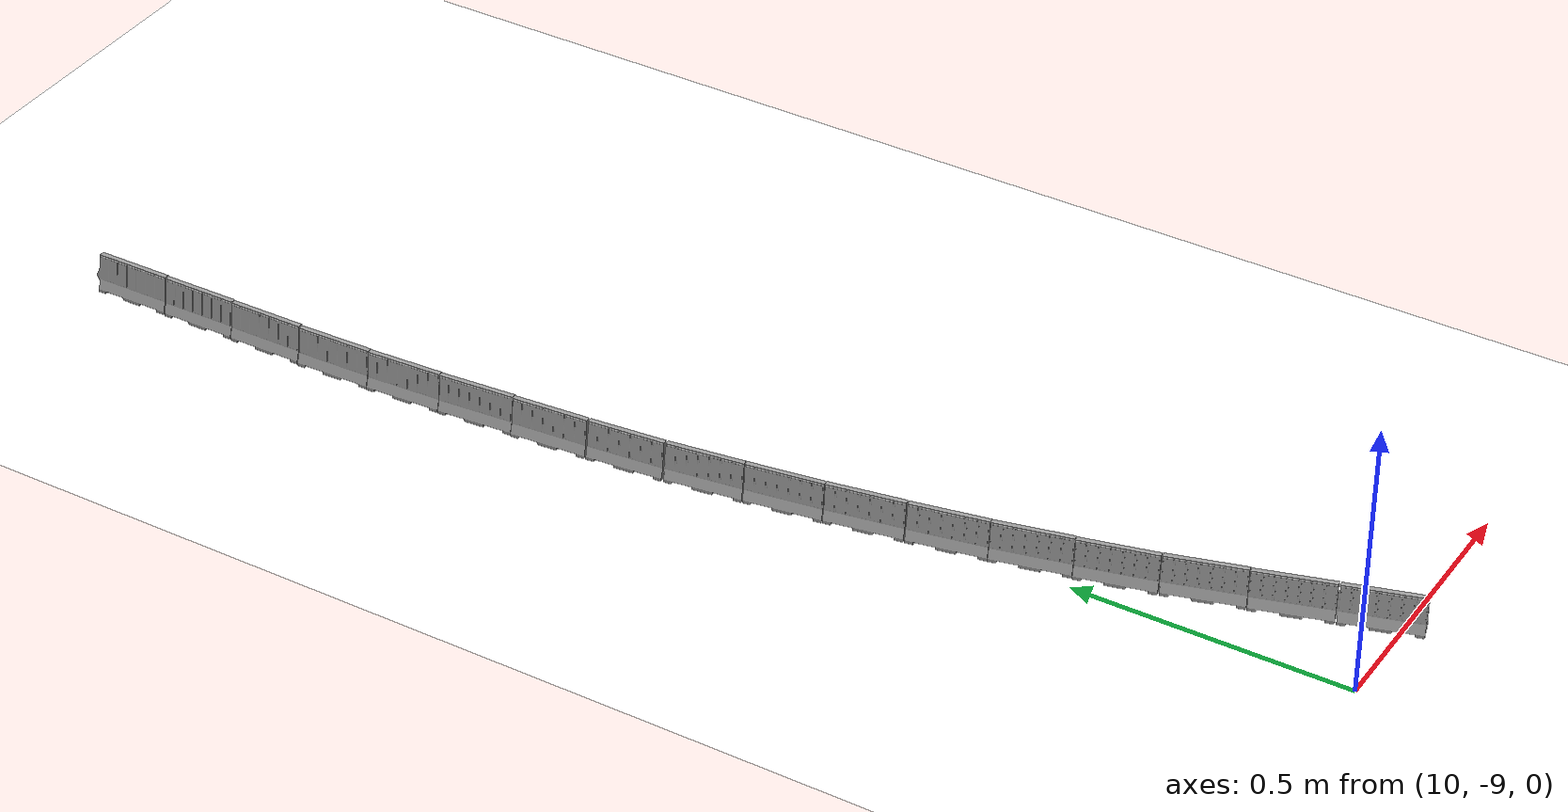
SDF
<sdf version="1.6">
 <world name="bfmc_official">
  <model name="track">
   <static>1</static>
   <link name="link">
    <collision name="collision">
     <geometry><plane><normal>0 0 1</normal><size>14.68 14.99</size></plane></geometry>
     <surface>
      <contact><collide_bitmask>65535</collide_bitmask></contact>
      <friction><ode><mu>1</mu><mu2>1</mu2></ode></friction>
     </surface>
    </collision>
    <visual name="visual">
     <geometry><plane><normal>0 0 1</normal><size>14.68 14.99</size></plane></geometry>
     <material>
      <ambient>1 1 1 1</ambient>
      <diffuse>1 1 1 1</diffuse>
      <specular>0 0 0 0</specular>
      <emissive>1 1 1 1</emissive>
      <script>
       <uri>model://track/materials/scripts</uri>
       <uri>model://track/materials/textures</uri>
       <name>BFMC_MATERIAL</name>
      </script>
     </material>
    </visual>
   </link>
   <pose>7.34 -7.495 0 0 -0 0</pose>
  </model>
  <model name="separator_clone_clone_clone_clone_clone_clone_clone_clone_2_clone_clone_clone_clone_clone_clone_clone_clone_clone_clone_clone_clone_clone_clone_clone_clone_clone_clone_clone_clone_clone_clone_clone_clone_clone_clone_clone_clone_clone_clone_clone_clone_clone_clone_clone_clone_clone_clone_clone_clone_clone_0_clone">
   <link name="separator::separator::link_0">
    <inertial>
     <mass>1</mass>
     <inertia>
      <ixx>0.166667</ixx>
      <ixy>0</ixy>
      <ixz>0</ixz>
      <iyy>0.166667</iyy>
      <iyz>0</iyz>
      <izz>0.166667</izz>
     </inertia>
    </inertial>
    <visual name="visual">
     <geometry><mesh><uri>model://separator/meshes/separator.dae</uri><scale>1 1 1</scale></mesh></geometry>
     <material>
      <lighting>1</lighting>
      <script><uri>file://media/materials/scripts/gazebo.material</uri><name>Gazebo/Gray</name></script>
      <shader type="vertex"><normal_map>__default__</normal_map></shader>
      <ambient>0.3 0.3 0.3 1</ambient>
      <diffuse>0.7 0.7 0.7 1</diffuse>
      <specular>0.01 0.01 0.01 1</specular>
      <emissive>0 0 0 1</emissive>
     </material>
    </visual>
    <collision name="collision">
     <geometry><mesh><uri>model://separator/meshes/separator.dae</uri><scale>1 1 1</scale></mesh></geometry>
     <surface>
      <friction>
       <ode><mu>1</mu><mu2>1</mu2><fdir1>0 0 0</fdir1><slip1>0</slip1><slip2>0</slip2></ode>
       <torsional>
        <coefficient>1</coefficient>
        <patch_radius>0</patch_radius>
        <surface_radius>0</surface_radius>
        <use_patch_radius>1</use_patch_radius>
        <ode><slip>0</slip></ode>
       </torsional>
      </friction>
      <bounce><restitution_coefficient>0</restitution_coefficient><threshold>1e+06</threshold></bounce>
      <contact>
       <collide_without_contact>0</collide_without_contact>
       <collide_without_contact_bitmask>1</collide_without_contact_bitmask>
       <collide_bitmask>1</collide_bitmask>
       <ode>
        <soft_cfm>0</soft_cfm>
        <soft_erp>0.2</soft_erp>
        <kp>1e+13</kp>
        <kd>1</kd>
        <max_vel>0.01</max_vel>
        <min_depth>0</min_depth>
       </ode>
       <bullet>
        <split_impulse>1</split_impulse>
        <split_impulse_penetration_threshold>-0.01</split_impulse_penetration_threshold>
        <soft_cfm>0</soft_cfm>
        <soft_erp>0.2</soft_erp>
        <kp>1e+13</kp>
        <kd>1</kd>
       </bullet>
      </contact>
     </surface>
    </collision>
   </link>
   <static>1</static>
   <pose>10.171 -8.96571 0.044642 0 0 -2.84896</pose>
  </model>
  <model name="separator_clone_clone_clone_clone_clone_clone_clone_clone_2_clone_clone_clone_clone_clone_clone_clone_clone_clone_clone_clone_clone_clone_clone_clone_clone_clone_clone_clone_clone_clone_clone_clone_clone_clone_clone_clone_clone_clone_clone_clone_clone_clone_clone_clone_clone_clone_clone_clone_clone_clone_0_clone_clone">
   <link name="separator::separator::link_0">
    <inertial>
     <mass>1</mass>
     <inertia>
      <ixx>0.166667</ixx>
      <ixy>0</ixy>
      <ixz>0</ixz>
      <iyy>0.166667</iyy>
      <iyz>0</iyz>
      <izz>0.166667</izz>
     </inertia>
    </inertial>
    <visual name="visual">
     <geometry><mesh><uri>model://separator/meshes/separator.dae</uri><scale>1 1 1</scale></mesh></geometry>
     <material>
      <lighting>1</lighting>
      <script><uri>file://media/materials/scripts/gazebo.material</uri><name>Gazebo/Gray</name></script>
      <shader type="vertex"><normal_map>__default__</normal_map></shader>
      <ambient>0.3 0.3 0.3 1</ambient>
      <diffuse>0.7 0.7 0.7 1</diffuse>
      <specular>0.01 0.01 0.01 1</specular>
      <emissive>0 0 0 1</emissive>
     </material>
    </visual>
    <collision name="collision">
     <geometry><mesh><uri>model://separator/meshes/separator.dae</uri><scale>1 1 1</scale></mesh></geometry>
     <surface>
      <friction>
       <ode><mu>1</mu><mu2>1</mu2><fdir1>0 0 0</fdir1><slip1>0</slip1><slip2>0</slip2></ode>
       <torsional>
        <coefficient>1</coefficient>
        <patch_radius>0</patch_radius>
        <surface_radius>0</surface_radius>
        <use_patch_radius>1</use_patch_radius>
        <ode><slip>0</slip></ode>
       </torsional>
      </friction>
      <bounce><restitution_coefficient>0</restitution_coefficient><threshold>1e+06</threshold></bounce>
      <contact>
       <collide_without_contact>0</collide_without_contact>
       <collide_without_contact_bitmask>1</collide_without_contact_bitmask>
       <collide_bitmask>1</collide_bitmask>
       <ode>
        <soft_cfm>0</soft_cfm>
        <soft_erp>0.2</soft_erp>
        <kp>1e+13</kp>
        <kd>1</kd>
        <max_vel>0.01</max_vel>
        <min_depth>0</min_depth>
       </ode>
       <bullet>
        <split_impulse>1</split_impulse>
        <split_impulse_penetration_threshold>-0.01</split_impulse_penetration_threshold>
        <soft_cfm>0</soft_cfm>
        <soft_erp>0.2</soft_erp>
        <kp>1e+13</kp>
        <kd>1</kd>
       </bullet>
      </contact>
     </surface>
    </collision>
   </link>
   <static>1</static>
   <pose>10.1303 -8.82861 0.044642 0 0 -2.84896</pose>
  </model>
  <model name="separator_clone_clone_clone_clone_clone_clone_clone_clone_2_clone_clone_clone_clone_clone_clone_clone_clone_clone_clone_clone_clone_clone_clone_clone_clone_clone_clone_clone_clone_clone_clone_clone_clone_clone_clone_clone_clone_clone_clone_clone_clone_clone_clone_clone_clone_clone_clone_clone_clone_clone_0_clone_clone_clone">
   <link name="separator::separator::link_0">
    <inertial>
     <mass>1</mass>
     <inertia>
      <ixx>0.166667</ixx>
      <ixy>0</ixy>
      <ixz>0</ixz>
      <iyy>0.166667</iyy>
      <iyz>0</iyz>
      <izz>0.166667</izz>
     </inertia>
    </inertial>
    <visual name="visual">
     <geometry><mesh><uri>model://separator/meshes/separator.dae</uri><scale>1 1 1</scale></mesh></geometry>
     <material>
      <lighting>1</lighting>
      <script><uri>file://media/materials/scripts/gazebo.material</uri><name>Gazebo/Gray</name></script>
      <shader type="vertex"><normal_map>__default__</normal_map></shader>
      <ambient>0.3 0.3 0.3 1</ambient>
      <diffuse>0.7 0.7 0.7 1</diffuse>
      <specular>0.01 0.01 0.01 1</specular>
      <emissive>0 0 0 1</emissive>
     </material>
    </visual>
    <collision name="collision">
     <geometry><mesh><uri>model://separator/meshes/separator.dae</uri><scale>1 1 1</scale></mesh></geometry>
     <surface>
      <friction>
       <ode><mu>1</mu><mu2>1</mu2><fdir1>0 0 0</fdir1><slip1>0</slip1><slip2>0</slip2></ode>
       <torsional>
        <coefficient>1</coefficient>
        <patch_radius>0</patch_radius>
        <surface_radius>0</surface_radius>
        <use_patch_radius>1</use_patch_radius>
        <ode><slip>0</slip></ode>
       </torsional>
      </friction>
      <bounce><restitution_coefficient>0</restitution_coefficient><threshold>1e+06</threshold></bounce>
      <contact>
       <collide_without_contact>0</collide_without_contact>
       <collide_without_contact_bitmask>1</collide_without_contact_bitmask>
       <collide_bitmask>1</collide_bitmask>
       <ode>
        <soft_cfm>0</soft_cfm>
        <soft_erp>0.2</soft_erp>
        <kp>1e+13</kp>
        <kd>1</kd>
        <max_vel>0.01</max_vel>
        <min_depth>0</min_depth>
       </ode>
       <bullet>
        <split_impulse>1</split_impulse>
        <split_impulse_penetration_threshold>-0.01</split_impulse_penetration_threshold>
        <soft_cfm>0</soft_cfm>
        <soft_erp>0.2</soft_erp>
        <kp>1e+13</kp>
        <kd>1</kd>
       </bullet>
      </contact>
     </surface>
    </collision>
   </link>
   <static>1</static>
   <pose>10.0918 -8.69257 0.044642 0 0 -2.8586</pose>
  </model>
  <model name="separator_clone_clone_clone_clone_clone_clone_clone_clone_2_clone_clone_clone_clone_clone_clone_clone_clone_clone_clone_clone_clone_clone_clone_clone_clone_clone_clone_clone_clone_clone_clone_clone_clone_clone_clone_clone_clone_clone_clone_clone_clone_clone_clone_clone_clone_clone_clone_clone_clone_clone_0_clone_clone_clone_clone">
   <link name="separator::separator::link_0">
    <inertial>
     <mass>1</mass>
     <inertia>
      <ixx>0.166667</ixx>
      <ixy>0</ixy>
      <ixz>0</ixz>
      <iyy>0.166667</iyy>
      <iyz>0</iyz>
      <izz>0.166667</izz>
     </inertia>
    </inertial>
    <visual name="visual">
     <geometry><mesh><uri>model://separator/meshes/separator.dae</uri><scale>1 1 1</scale></mesh></geometry>
     <material>
      <lighting>1</lighting>
      <script><uri>file://media/materials/scripts/gazebo.material</uri><name>Gazebo/Gray</name></script>
      <shader type="vertex"><normal_map>__default__</normal_map></shader>
      <ambient>0.3 0.3 0.3 1</ambient>
      <diffuse>0.7 0.7 0.7 1</diffuse>
      <specular>0.01 0.01 0.01 1</specular>
      <emissive>0 0 0 1</emissive>
     </material>
    </visual>
    <collision name="collision">
     <geometry><mesh><uri>model://separator/meshes/separator.dae</uri><scale>1 1 1</scale></mesh></geometry>
     <surface>
      <friction>
       <ode><mu>1</mu><mu2>1</mu2><fdir1>0 0 0</fdir1><slip1>0</slip1><slip2>0</slip2></ode>
       <torsional>
        <coefficient>1</coefficient>
        <patch_radius>0</patch_radius>
        <surface_radius>0</surface_radius>
        <use_patch_radius>1</use_patch_radius>
        <ode><slip>0</slip></ode>
       </torsional>
      </friction>
      <bounce><restitution_coefficient>0</restitution_coefficient><threshold>1e+06</threshold></bounce>
      <contact>
       <collide_without_contact>0</collide_without_contact>
       <collide_without_contact_bitmask>1</collide_without_contact_bitmask>
       <collide_bitmask>1</collide_bitmask>
       <ode>
        <soft_cfm>0</soft_cfm>
        <soft_erp>0.2</soft_erp>
        <kp>1e+13</kp>
        <kd>1</kd>
        <max_vel>0.01</max_vel>
        <min_depth>0</min_depth>
       </ode>
       <bullet>
        <split_impulse>1</split_impulse>
        <split_impulse_penetration_threshold>-0.01</split_impulse_penetration_threshold>
        <soft_cfm>0</soft_cfm>
        <soft_erp>0.2</soft_erp>
        <kp>1e+13</kp>
        <kd>1</kd>
       </bullet>
      </contact>
     </surface>
    </collision>
   </link>
   <static>1</static>
   <pose>10.0544 -8.55568 0.044642 0 0 -2.89929</pose>
  </model>
  <model name="separator_clone_clone_clone_clone_clone_clone_clone_clone_2_clone_clone_clone_clone_clone_clone_clone_clone_clone_clone_clone_clone_clone_clone_clone_clone_clone_clone_clone_clone_clone_clone_clone_clone_clone_clone_clone_clone_clone_clone_clone_clone_clone_clone_clone_clone_clone_clone_clone_clone_clone_0_clone_clone_clone_clone_clone">
   <link name="separator::separator::link_0">
    <inertial>
     <mass>1</mass>
     <inertia>
      <ixx>0.166667</ixx>
      <ixy>0</ixy>
      <ixz>0</ixz>
      <iyy>0.166667</iyy>
      <iyz>0</iyz>
      <izz>0.166667</izz>
     </inertia>
    </inertial>
    <visual name="visual">
     <geometry><mesh><uri>model://separator/meshes/separator.dae</uri><scale>1 1 1</scale></mesh></geometry>
     <material>
      <lighting>1</lighting>
      <script><uri>file://media/materials/scripts/gazebo.material</uri><name>Gazebo/Gray</name></script>
      <shader type="vertex"><normal_map>__default__</normal_map></shader>
      <ambient>0.3 0.3 0.3 1</ambient>
      <diffuse>0.7 0.7 0.7 1</diffuse>
      <specular>0.01 0.01 0.01 1</specular>
      <emissive>0 0 0 1</emissive>
     </material>
    </visual>
    <collision name="collision">
     <geometry><mesh><uri>model://separator/meshes/separator.dae</uri><scale>1 1 1</scale></mesh></geometry>
     <surface>
      <friction>
       <ode><mu>1</mu><mu2>1</mu2><fdir1>0 0 0</fdir1><slip1>0</slip1><slip2>0</slip2></ode>
       <torsional>
        <coefficient>1</coefficient>
        <patch_radius>0</patch_radius>
        <surface_radius>0</surface_radius>
        <use_patch_radius>1</use_patch_radius>
        <ode><slip>0</slip></ode>
       </torsional>
      </friction>
      <bounce><restitution_coefficient>0</restitution_coefficient><threshold>1e+06</threshold></bounce>
      <contact>
       <collide_without_contact>0</collide_without_contact>
       <collide_without_contact_bitmask>1</collide_without_contact_bitmask>
       <collide_bitmask>1</collide_bitmask>
       <ode>
        <soft_cfm>0</soft_cfm>
        <soft_erp>0.2</soft_erp>
        <kp>1e+13</kp>
        <kd>1</kd>
        <max_vel>0.01</max_vel>
        <min_depth>0</min_depth>
       </ode>
       <bullet>
        <split_impulse>1</split_impulse>
        <split_impulse_penetration_threshold>-0.01</split_impulse_penetration_threshold>
        <soft_cfm>0</soft_cfm>
        <soft_erp>0.2</soft_erp>
        <kp>1e+13</kp>
        <kd>1</kd>
       </bullet>
      </contact>
     </surface>
    </collision>
   </link>
   <static>1</static>
   <pose>10.0232 -8.41831 0.044642 0 0 -2.91386</pose>
  </model>
  <model name="separator_clone_clone_clone_clone_clone_clone_clone_clone_2_clone_clone_clone_clone_clone_clone_clone_clone_clone_clone_clone_clone_clone_clone_clone_clone_clone_clone_clone_clone_clone_clone_clone_clone_clone_clone_clone_clone_clone_clone_clone_clone_clone_clone_clone_clone_clone_clone_clone_clone_clone_0_clone_clone_clone_clone_clone_clone">
   <link name="separator::separator::link_0">
    <inertial>
     <mass>1</mass>
     <inertia>
      <ixx>0.166667</ixx>
      <ixy>0</ixy>
      <ixz>0</ixz>
      <iyy>0.166667</iyy>
      <iyz>0</iyz>
      <izz>0.166667</izz>
     </inertia>
    </inertial>
    <visual name="visual">
     <geometry><mesh><uri>model://separator/meshes/separator.dae</uri><scale>1 1 1</scale></mesh></geometry>
     <material>
      <lighting>1</lighting>
      <script><uri>file://media/materials/scripts/gazebo.material</uri><name>Gazebo/Gray</name></script>
      <shader type="vertex"><normal_map>__default__</normal_map></shader>
      <ambient>0.3 0.3 0.3 1</ambient>
      <diffuse>0.7 0.7 0.7 1</diffuse>
      <specular>0.01 0.01 0.01 1</specular>
      <emissive>0 0 0 1</emissive>
     </material>
    </visual>
    <collision name="collision">
     <geometry><mesh><uri>model://separator/meshes/separator.dae</uri><scale>1 1 1</scale></mesh></geometry>
     <surface>
      <friction>
       <ode><mu>1</mu><mu2>1</mu2><fdir1>0 0 0</fdir1><slip1>0</slip1><slip2>0</slip2></ode>
       <torsional>
        <coefficient>1</coefficient>
        <patch_radius>0</patch_radius>
        <surface_radius>0</surface_radius>
        <use_patch_radius>1</use_patch_radius>
        <ode><slip>0</slip></ode>
       </torsional>
      </friction>
      <bounce><restitution_coefficient>0</restitution_coefficient><threshold>1e+06</threshold></bounce>
      <contact>
       <collide_without_contact>0</collide_without_contact>
       <collide_without_contact_bitmask>1</collide_without_contact_bitmask>
       <collide_bitmask>1</collide_bitmask>
       <ode>
        <soft_cfm>0</soft_cfm>
        <soft_erp>0.2</soft_erp>
        <kp>1e+13</kp>
        <kd>1</kd>
        <max_vel>0.01</max_vel>
        <min_depth>0</min_depth>
       </ode>
       <bullet>
        <split_impulse>1</split_impulse>
        <split_impulse_penetration_threshold>-0.01</split_impulse_penetration_threshold>
        <soft_cfm>0</soft_cfm>
        <soft_erp>0.2</soft_erp>
        <kp>1e+13</kp>
        <kd>1</kd>
       </bullet>
      </contact>
     </surface>
    </collision>
   </link>
   <static>1</static>
   <pose>9.99442 -8.28076 0.044642 0 0 -2.94815</pose>
  </model>
  <model name="separator_clone_clone_clone_clone_clone_clone_clone_clone_2_clone_clone_clone_clone_clone_clone_clone_clone_clone_clone_clone_clone_clone_clone_clone_clone_clone_clone_clone_clone_clone_clone_clone_clone_clone_clone_clone_clone_clone_clone_clone_clone_clone_clone_clone_clone_clone_clone_clone_clone_clone_0_clone_clone_clone_clone_clone_clone_clone">
   <link name="separator::separator::link_0">
    <inertial>
     <mass>1</mass>
     <inertia>
      <ixx>0.166667</ixx>
      <ixy>0</ixy>
      <ixz>0</ixz>
      <iyy>0.166667</iyy>
      <iyz>0</iyz>
      <izz>0.166667</izz>
     </inertia>
    </inertial>
    <visual name="visual">
     <geometry><mesh><uri>model://separator/meshes/separator.dae</uri><scale>1 1 1</scale></mesh></geometry>
     <material>
      <lighting>1</lighting>
      <script><uri>file://media/materials/scripts/gazebo.material</uri><name>Gazebo/Gray</name></script>
      <shader type="vertex"><normal_map>__default__</normal_map></shader>
      <ambient>0.3 0.3 0.3 1</ambient>
      <diffuse>0.7 0.7 0.7 1</diffuse>
      <specular>0.01 0.01 0.01 1</specular>
      <emissive>0 0 0 1</emissive>
     </material>
    </visual>
    <collision name="collision">
     <geometry><mesh><uri>model://separator/meshes/separator.dae</uri><scale>1 1 1</scale></mesh></geometry>
     <surface>
      <friction>
       <ode><mu>1</mu><mu2>1</mu2><fdir1>0 0 0</fdir1><slip1>0</slip1><slip2>0</slip2></ode>
       <torsional>
        <coefficient>1</coefficient>
        <patch_radius>0</patch_radius>
        <surface_radius>0</surface_radius>
        <use_patch_radius>1</use_patch_radius>
        <ode><slip>0</slip></ode>
       </torsional>
      </friction>
      <bounce><restitution_coefficient>0</restitution_coefficient><threshold>1e+06</threshold></bounce>
      <contact>
       <collide_without_contact>0</collide_without_contact>
       <collide_without_contact_bitmask>1</collide_without_contact_bitmask>
       <collide_bitmask>1</collide_bitmask>
       <ode>
        <soft_cfm>0</soft_cfm>
        <soft_erp>0.2</soft_erp>
        <kp>1e+13</kp>
        <kd>1</kd>
        <max_vel>0.01</max_vel>
        <min_depth>0</min_depth>
       </ode>
       <bullet>
        <split_impulse>1</split_impulse>
        <split_impulse_penetration_threshold>-0.01</split_impulse_penetration_threshold>
        <soft_cfm>0</soft_cfm>
        <soft_erp>0.2</soft_erp>
        <kp>1e+13</kp>
        <kd>1</kd>
       </bullet>
      </contact>
     </surface>
    </collision>
   </link>
   <static>1</static>
   <pose>9.96917 -8.14094 0.044642 0 0 -2.96699</pose>
  </model>
  <model name="separator_clone_clone_clone_clone_clone_clone_clone_clone_2_clone_clone_clone_clone_clone_clone_clone_clone_clone_clone_clone_clone_clone_clone_clone_clone_clone_clone_clone_clone_clone_clone_clone_clone_clone_clone_clone_clone_clone_clone_clone_clone_clone_clone_clone_clone_clone_clone_clone_clone_clone_0_clone_clone_clone_clone_clone_clone_clone_clone">
   <link name="separator::separator::link_0">
    <inertial>
     <mass>1</mass>
     <inertia>
      <ixx>0.166667</ixx>
      <ixy>0</ixy>
      <ixz>0</ixz>
      <iyy>0.166667</iyy>
      <iyz>0</iyz>
      <izz>0.166667</izz>
     </inertia>
    </inertial>
    <visual name="visual">
     <geometry><mesh><uri>model://separator/meshes/separator.dae</uri><scale>1 1 1</scale></mesh></geometry>
     <material>
      <lighting>1</lighting>
      <script><uri>file://media/materials/scripts/gazebo.material</uri><name>Gazebo/Gray</name></script>
      <shader type="vertex"><normal_map>__default__</normal_map></shader>
      <ambient>0.3 0.3 0.3 1</ambient>
      <diffuse>0.7 0.7 0.7 1</diffuse>
      <specular>0.01 0.01 0.01 1</specular>
      <emissive>0 0 0 1</emissive>
     </material>
    </visual>
    <collision name="collision">
     <geometry><mesh><uri>model://separator/meshes/separator.dae</uri><scale>1 1 1</scale></mesh></geometry>
     <surface>
      <friction>
       <ode><mu>1</mu><mu2>1</mu2><fdir1>0 0 0</fdir1><slip1>0</slip1><slip2>0</slip2></ode>
       <torsional>
        <coefficient>1</coefficient>
        <patch_radius>0</patch_radius>
        <surface_radius>0</surface_radius>
        <use_patch_radius>1</use_patch_radius>
        <ode><slip>0</slip></ode>
       </torsional>
      </friction>
      <bounce><restitution_coefficient>0</restitution_coefficient><threshold>1e+06</threshold></bounce>
      <contact>
       <collide_without_contact>0</collide_without_contact>
       <collide_without_contact_bitmask>1</collide_without_contact_bitmask>
       <collide_bitmask>1</collide_bitmask>
       <ode>
        <soft_cfm>0</soft_cfm>
        <soft_erp>0.2</soft_erp>
        <kp>1e+13</kp>
        <kd>1</kd>
        <max_vel>0.01</max_vel>
        <min_depth>0</min_depth>
       </ode>
       <bullet>
        <split_impulse>1</split_impulse>
        <split_impulse_penetration_threshold>-0.01</split_impulse_penetration_threshold>
        <soft_cfm>0</soft_cfm>
        <soft_erp>0.2</soft_erp>
        <kp>1e+13</kp>
        <kd>1</kd>
       </bullet>
      </contact>
     </surface>
    </collision>
   </link>
   <static>1</static>
   <pose>9.9463 -8.00186 0.044642 0 0 -2.99357</pose>
  </model>
  <model name="separator_clone_clone_clone_clone_clone_clone_clone_clone_2_clone_clone_clone_clone_clone_clone_clone_clone_clone_clone_clone_clone_clone_clone_clone_clone_clone_clone_clone_clone_clone_clone_clone_clone_clone_clone_clone_clone_clone_clone_clone_clone_clone_clone_clone_clone_clone_clone_clone_clone_clone_0_clone_clone_clone_clone_clone_clone_clone_clone_0">
   <link name="separator::separator::link_0">
    <inertial>
     <mass>1</mass>
     <inertia>
      <ixx>0.166667</ixx>
      <ixy>0</ixy>
      <ixz>0</ixz>
      <iyy>0.166667</iyy>
      <iyz>0</iyz>
      <izz>0.166667</izz>
     </inertia>
    </inertial>
    <visual name="visual">
     <geometry><mesh><uri>model://separator/meshes/separator.dae</uri><scale>1 1 1</scale></mesh></geometry>
     <material>
      <lighting>1</lighting>
      <script><uri>file://media/materials/scripts/gazebo.material</uri><name>Gazebo/Gray</name></script>
      <shader type="vertex"><normal_map>__default__</normal_map></shader>
      <ambient>0.3 0.3 0.3 1</ambient>
      <diffuse>0.7 0.7 0.7 1</diffuse>
      <specular>0.01 0.01 0.01 1</specular>
      <emissive>0 0 0 1</emissive>
     </material>
    </visual>
    <collision name="collision">
     <geometry><mesh><uri>model://separator/meshes/separator.dae</uri><scale>1 1 1</scale></mesh></geometry>
     <surface>
      <friction>
       <ode><mu>1</mu><mu2>1</mu2><fdir1>0 0 0</fdir1><slip1>0</slip1><slip2>0</slip2></ode>
       <torsional>
        <coefficient>1</coefficient>
        <patch_radius>0</patch_radius>
        <surface_radius>0</surface_radius>
        <use_patch_radius>1</use_patch_radius>
        <ode><slip>0</slip></ode>
       </torsional>
      </friction>
      <bounce><restitution_coefficient>0</restitution_coefficient><threshold>1e+06</threshold></bounce>
      <contact>
       <collide_without_contact>0</collide_without_contact>
       <collide_without_contact_bitmask>1</collide_without_contact_bitmask>
       <collide_bitmask>1</collide_bitmask>
       <ode>
        <soft_cfm>0</soft_cfm>
        <soft_erp>0.2</soft_erp>
        <kp>1e+13</kp>
        <kd>1</kd>
        <max_vel>0.01</max_vel>
        <min_depth>0</min_depth>
       </ode>
       <bullet>
        <split_impulse>1</split_impulse>
        <split_impulse_penetration_threshold>-0.01</split_impulse_penetration_threshold>
        <soft_cfm>0</soft_cfm>
        <soft_erp>0.2</soft_erp>
        <kp>1e+13</kp>
        <kd>1</kd>
       </bullet>
      </contact>
     </surface>
    </collision>
   </link>
   <static>1</static>
   <pose>9.92639 -7.86181 0.044642 0 0 -3.00797</pose>
  </model>
  <model name="separator_clone_clone_clone_clone_clone_clone_clone_clone_2_clone_clone_clone_clone_clone_clone_clone_clone_clone_clone_clone_clone_clone_clone_clone_clone_clone_clone_clone_clone_clone_clone_clone_clone_clone_clone_clone_clone_clone_clone_clone_clone_clone_clone_clone_clone_clone_clone_clone_clone_clone_0_clone_clone_clone_clone_clone_clone_clone_clone_0_clone">
   <link name="separator::separator::link_0">
    <inertial>
     <mass>1</mass>
     <inertia>
      <ixx>0.166667</ixx>
      <ixy>0</ixy>
      <ixz>0</ixz>
      <iyy>0.166667</iyy>
      <iyz>0</iyz>
      <izz>0.166667</izz>
     </inertia>
    </inertial>
    <visual name="visual">
     <geometry><mesh><uri>model://separator/meshes/separator.dae</uri><scale>1 1 1</scale></mesh></geometry>
     <material>
      <lighting>1</lighting>
      <script><uri>file://media/materials/scripts/gazebo.material</uri><name>Gazebo/Gray</name></script>
      <shader type="vertex"><normal_map>__default__</normal_map></shader>
      <ambient>0.3 0.3 0.3 1</ambient>
      <diffuse>0.7 0.7 0.7 1</diffuse>
      <specular>0.01 0.01 0.01 1</specular>
      <emissive>0 0 0 1</emissive>
     </material>
    </visual>
    <collision name="collision">
     <geometry><mesh><uri>model://separator/meshes/separator.dae</uri><scale>1 1 1</scale></mesh></geometry>
     <surface>
      <friction>
       <ode><mu>1</mu><mu2>1</mu2><fdir1>0 0 0</fdir1><slip1>0</slip1><slip2>0</slip2></ode>
       <torsional>
        <coefficient>1</coefficient>
        <patch_radius>0</patch_radius>
        <surface_radius>0</surface_radius>
        <use_patch_radius>1</use_patch_radius>
        <ode><slip>0</slip></ode>
       </torsional>
      </friction>
      <bounce><restitution_coefficient>0</restitution_coefficient><threshold>1e+06</threshold></bounce>
      <contact>
       <collide_without_contact>0</collide_without_contact>
       <collide_without_contact_bitmask>1</collide_without_contact_bitmask>
       <collide_bitmask>1</collide_bitmask>
       <ode>
        <soft_cfm>0</soft_cfm>
        <soft_erp>0.2</soft_erp>
        <kp>1e+13</kp>
        <kd>1</kd>
        <max_vel>0.01</max_vel>
        <min_depth>0</min_depth>
       </ode>
       <bullet>
        <split_impulse>1</split_impulse>
        <split_impulse_penetration_threshold>-0.01</split_impulse_penetration_threshold>
        <soft_cfm>0</soft_cfm>
        <soft_erp>0.2</soft_erp>
        <kp>1e+13</kp>
        <kd>1</kd>
       </bullet>
      </contact>
     </surface>
    </collision>
   </link>
   <static>1</static>
   <pose>9.90967 -7.71945 0.044642 0 0 -3.04653</pose>
  </model>
  <model name="separator_clone_clone_clone_clone_clone_clone_clone_clone_2_clone_clone_clone_clone_clone_clone_clone_clone_clone_clone_clone_clone_clone_clone_clone_clone_clone_clone_clone_clone_clone_clone_clone_clone_clone_clone_clone_clone_clone_clone_clone_clone_clone_clone_clone_clone_clone_clone_clone_clone_clone_0_clone_clone_clone_clone_clone_clone_clone_clone_0_clone_clone">
   <link name="separator::separator::link_0">
    <inertial>
     <mass>1</mass>
     <inertia>
      <ixx>0.166667</ixx>
      <ixy>0</ixy>
      <ixz>0</ixz>
      <iyy>0.166667</iyy>
      <iyz>0</iyz>
      <izz>0.166667</izz>
     </inertia>
    </inertial>
    <visual name="visual">
     <geometry><mesh><uri>model://separator/meshes/separator.dae</uri><scale>1 1 1</scale></mesh></geometry>
     <material>
      <lighting>1</lighting>
      <script><uri>file://media/materials/scripts/gazebo.material</uri><name>Gazebo/Gray</name></script>
      <shader type="vertex"><normal_map>__default__</normal_map></shader>
      <ambient>0.3 0.3 0.3 1</ambient>
      <diffuse>0.7 0.7 0.7 1</diffuse>
      <specular>0.01 0.01 0.01 1</specular>
      <emissive>0 0 0 1</emissive>
     </material>
    </visual>
    <collision name="collision">
     <geometry><mesh><uri>model://separator/meshes/separator.dae</uri><scale>1 1 1</scale></mesh></geometry>
     <surface>
      <friction>
       <ode><mu>1</mu><mu2>1</mu2><fdir1>0 0 0</fdir1><slip1>0</slip1><slip2>0</slip2></ode>
       <torsional>
        <coefficient>1</coefficient>
        <patch_radius>0</patch_radius>
        <surface_radius>0</surface_radius>
        <use_patch_radius>1</use_patch_radius>
        <ode><slip>0</slip></ode>
       </torsional>
      </friction>
      <bounce><restitution_coefficient>0</restitution_coefficient><threshold>1e+06</threshold></bounce>
      <contact>
       <collide_without_contact>0</collide_without_contact>
       <collide_without_contact_bitmask>1</collide_without_contact_bitmask>
       <collide_bitmask>1</collide_bitmask>
       <ode>
        <soft_cfm>0</soft_cfm>
        <soft_erp>0.2</soft_erp>
        <kp>1e+13</kp>
        <kd>1</kd>
        <max_vel>0.01</max_vel>
        <min_depth>0</min_depth>
       </ode>
       <bullet>
        <split_impulse>1</split_impulse>
        <split_impulse_penetration_threshold>-0.01</split_impulse_penetration_threshold>
        <soft_cfm>0</soft_cfm>
        <soft_erp>0.2</soft_erp>
        <kp>1e+13</kp>
        <kd>1</kd>
       </bullet>
      </contact>
     </surface>
    </collision>
   </link>
   <static>1</static>
   <pose>9.89736 -7.57708 0.044642 0 0 -3.06323</pose>
  </model>
  <model name="separator_clone_clone_clone_clone_clone_clone_clone_clone_2_clone_clone_clone_clone_clone_clone_clone_clone_clone_clone_clone_clone_clone_clone_clone_clone_clone_clone_clone_clone_clone_clone_clone_clone_clone_clone_clone_clone_clone_clone_clone_clone_clone_clone_clone_clone_clone_clone_clone_clone_clone_0_clone_clone_clone_clone_clone_clone_clone_clone_0_clone_clone_clone">
   <link name="separator::separator::link_0">
    <inertial>
     <mass>1</mass>
     <inertia>
      <ixx>0.166667</ixx>
      <ixy>0</ixy>
      <ixz>0</ixz>
      <iyy>0.166667</iyy>
      <iyz>0</iyz>
      <izz>0.166667</izz>
     </inertia>
    </inertial>
    <visual name="visual">
     <geometry><mesh><uri>model://separator/meshes/separator.dae</uri><scale>1 1 1</scale></mesh></geometry>
     <material>
      <lighting>1</lighting>
      <script><uri>file://media/materials/scripts/gazebo.material</uri><name>Gazebo/Gray</name></script>
      <shader type="vertex"><normal_map>__default__</normal_map></shader>
      <ambient>0.3 0.3 0.3 1</ambient>
      <diffuse>0.7 0.7 0.7 1</diffuse>
      <specular>0.01 0.01 0.01 1</specular>
      <emissive>0 0 0 1</emissive>
     </material>
    </visual>
    <collision name="collision">
     <geometry><mesh><uri>model://separator/meshes/separator.dae</uri><scale>1 1 1</scale></mesh></geometry>
     <surface>
      <friction>
       <ode><mu>1</mu><mu2>1</mu2><fdir1>0 0 0</fdir1><slip1>0</slip1><slip2>0</slip2></ode>
       <torsional>
        <coefficient>1</coefficient>
        <patch_radius>0</patch_radius>
        <surface_radius>0</surface_radius>
        <use_patch_radius>1</use_patch_radius>
        <ode><slip>0</slip></ode>
       </torsional>
      </friction>
      <bounce><restitution_coefficient>0</restitution_coefficient><threshold>1e+06</threshold></bounce>
      <contact>
       <collide_without_contact>0</collide_without_contact>
       <collide_without_contact_bitmask>1</collide_without_contact_bitmask>
       <collide_bitmask>1</collide_bitmask>
       <ode>
        <soft_cfm>0</soft_cfm>
        <soft_erp>0.2</soft_erp>
        <kp>1e+13</kp>
        <kd>1</kd>
        <max_vel>0.01</max_vel>
        <min_depth>0</min_depth>
       </ode>
       <bullet>
        <split_impulse>1</split_impulse>
        <split_impulse_penetration_threshold>-0.01</split_impulse_penetration_threshold>
        <soft_cfm>0</soft_cfm>
        <soft_erp>0.2</soft_erp>
        <kp>1e+13</kp>
        <kd>1</kd>
       </bullet>
      </contact>
     </surface>
    </collision>
   </link>
   <static>1</static>
   <pose>9.8882 -7.43587 0.044642 0 0 -3.06323</pose>
  </model>
  <model name="separator_clone_clone_clone_clone_clone_clone_clone_clone_2_clone_clone_clone_clone_clone_clone_clone_clone_clone_clone_clone_clone_clone_clone_clone_clone_clone_clone_clone_clone_clone_clone_clone_clone_clone_clone_clone_clone_clone_clone_clone_clone_clone_clone_clone_clone_clone_clone_clone_clone_clone_0_clone_clone_clone_clone_clone_clone_clone_clone_0_clone_clone_clone_clone">
   <link name="separator::separator::link_0">
    <inertial>
     <mass>1</mass>
     <inertia>
      <ixx>0.166667</ixx>
      <ixy>0</ixy>
      <ixz>0</ixz>
      <iyy>0.166667</iyy>
      <iyz>0</iyz>
      <izz>0.166667</izz>
     </inertia>
    </inertial>
    <visual name="visual">
     <geometry><mesh><uri>model://separator/meshes/separator.dae</uri><scale>1 1 1</scale></mesh></geometry>
     <material>
      <lighting>1</lighting>
      <script><uri>file://media/materials/scripts/gazebo.material</uri><name>Gazebo/Gray</name></script>
      <shader type="vertex"><normal_map>__default__</normal_map></shader>
      <ambient>0.3 0.3 0.3 1</ambient>
      <diffuse>0.7 0.7 0.7 1</diffuse>
      <specular>0.01 0.01 0.01 1</specular>
      <emissive>0 0 0 1</emissive>
     </material>
    </visual>
    <collision name="collision">
     <geometry><mesh><uri>model://separator/meshes/separator.dae</uri><scale>1 1 1</scale></mesh></geometry>
     <surface>
      <friction>
       <ode><mu>1</mu><mu2>1</mu2><fdir1>0 0 0</fdir1><slip1>0</slip1><slip2>0</slip2></ode>
       <torsional>
        <coefficient>1</coefficient>
        <patch_radius>0</patch_radius>
        <surface_radius>0</surface_radius>
        <use_patch_radius>1</use_patch_radius>
        <ode><slip>0</slip></ode>
       </torsional>
      </friction>
      <bounce><restitution_coefficient>0</restitution_coefficient><threshold>1e+06</threshold></bounce>
      <contact>
       <collide_without_contact>0</collide_without_contact>
       <collide_without_contact_bitmask>1</collide_without_contact_bitmask>
       <collide_bitmask>1</collide_bitmask>
       <ode>
        <soft_cfm>0</soft_cfm>
        <soft_erp>0.2</soft_erp>
        <kp>1e+13</kp>
        <kd>1</kd>
        <max_vel>0.01</max_vel>
        <min_depth>0</min_depth>
       </ode>
       <bullet>
        <split_impulse>1</split_impulse>
        <split_impulse_penetration_threshold>-0.01</split_impulse_penetration_threshold>
        <soft_cfm>0</soft_cfm>
        <soft_erp>0.2</soft_erp>
        <kp>1e+13</kp>
        <kd>1</kd>
       </bullet>
      </contact>
     </surface>
    </collision>
   </link>
   <static>1</static>
   <pose>9.87969 -7.29504 0.044642 0 0 -3.08647</pose>
  </model>
  <model name="separator_clone_clone_clone_clone_clone_clone_clone_clone_2_clone_clone_clone_clone_clone_clone_clone_clone_clone_clone_clone_clone_clone_clone_clone_clone_clone_clone_clone_clone_clone_clone_clone_clone_clone_clone_clone_clone_clone_clone_clone_clone_clone_clone_clone_clone_clone_clone_clone_clone_clone_0_clone_clone_clone_clone_clone_clone_clone_clone_0_clone_clone_clone_clone_clone">
   <link name="separator::separator::link_0">
    <inertial>
     <mass>1</mass>
     <inertia>
      <ixx>0.166667</ixx>
      <ixy>0</ixy>
      <ixz>0</ixz>
      <iyy>0.166667</iyy>
      <iyz>0</iyz>
      <izz>0.166667</izz>
     </inertia>
    </inertial>
    <visual name="visual">
     <geometry><mesh><uri>model://separator/meshes/separator.dae</uri><scale>1 1 1</scale></mesh></geometry>
     <material>
      <lighting>1</lighting>
      <script><uri>file://media/materials/scripts/gazebo.material</uri><name>Gazebo/Gray</name></script>
      <shader type="vertex"><normal_map>__default__</normal_map></shader>
      <ambient>0.3 0.3 0.3 1</ambient>
      <diffuse>0.7 0.7 0.7 1</diffuse>
      <specular>0.01 0.01 0.01 1</specular>
      <emissive>0 0 0 1</emissive>
     </material>
    </visual>
    <collision name="collision">
     <geometry><mesh><uri>model://separator/meshes/separator.dae</uri><scale>1 1 1</scale></mesh></geometry>
     <surface>
      <friction>
       <ode><mu>1</mu><mu2>1</mu2><fdir1>0 0 0</fdir1><slip1>0</slip1><slip2>0</slip2></ode>
       <torsional>
        <coefficient>1</coefficient>
        <patch_radius>0</patch_radius>
        <surface_radius>0</surface_radius>
        <use_patch_radius>1</use_patch_radius>
        <ode><slip>0</slip></ode>
       </torsional>
      </friction>
      <bounce><restitution_coefficient>0</restitution_coefficient><threshold>1e+06</threshold></bounce>
      <contact>
       <collide_without_contact>0</collide_without_contact>
       <collide_without_contact_bitmask>1</collide_without_contact_bitmask>
       <collide_bitmask>1</collide_bitmask>
       <ode>
        <soft_cfm>0</soft_cfm>
        <soft_erp>0.2</soft_erp>
        <kp>1e+13</kp>
        <kd>1</kd>
        <max_vel>0.01</max_vel>
        <min_depth>0</min_depth>
       </ode>
       <bullet>
        <split_impulse>1</split_impulse>
        <split_impulse_penetration_threshold>-0.01</split_impulse_penetration_threshold>
        <soft_cfm>0</soft_cfm>
        <soft_erp>0.2</soft_erp>
        <kp>1e+13</kp>
        <kd>1</kd>
       </bullet>
      </contact>
     </surface>
    </collision>
   </link>
   <static>1</static>
   <pose>9.87484 -7.15388 0.044642 0 0 -3.11218</pose>
  </model>
  <model name="separator_clone_clone_clone_clone_clone_clone_clone_clone_2_clone_clone_clone_clone_clone_clone_clone_clone_clone_clone_clone_clone_clone_clone_clone_clone_clone_clone_clone_clone_clone_clone_clone_clone_clone_clone_clone_clone_clone_clone_clone_clone_clone_clone_clone_clone_clone_clone_clone_clone_clone_0_clone_clone_clone_clone_clone_clone_clone_clone_0_clone_clone_clone_clone_clone_clone">
   <link name="separator::separator::link_0">
    <inertial>
     <mass>1</mass>
     <inertia>
      <ixx>0.166667</ixx>
      <ixy>0</ixy>
      <ixz>0</ixz>
      <iyy>0.166667</iyy>
      <iyz>0</iyz>
      <izz>0.166667</izz>
     </inertia>
    </inertial>
    <visual name="visual">
     <geometry><mesh><uri>model://separator/meshes/separator.dae</uri><scale>1 1 1</scale></mesh></geometry>
     <material>
      <lighting>1</lighting>
      <script><uri>file://media/materials/scripts/gazebo.material</uri><name>Gazebo/Gray</name></script>
      <shader type="vertex"><normal_map>__default__</normal_map></shader>
      <ambient>0.3 0.3 0.3 1</ambient>
      <diffuse>0.7 0.7 0.7 1</diffuse>
      <specular>0.01 0.01 0.01 1</specular>
      <emissive>0 0 0 1</emissive>
     </material>
    </visual>
    <collision name="collision">
     <geometry><mesh><uri>model://separator/meshes/separator.dae</uri><scale>1 1 1</scale></mesh></geometry>
     <surface>
      <friction>
       <ode><mu>1</mu><mu2>1</mu2><fdir1>0 0 0</fdir1><slip1>0</slip1><slip2>0</slip2></ode>
       <torsional>
        <coefficient>1</coefficient>
        <patch_radius>0</patch_radius>
        <surface_radius>0</surface_radius>
        <use_patch_radius>1</use_patch_radius>
        <ode><slip>0</slip></ode>
       </torsional>
      </friction>
      <bounce><restitution_coefficient>0</restitution_coefficient><threshold>1e+06</threshold></bounce>
      <contact>
       <collide_without_contact>0</collide_without_contact>
       <collide_without_contact_bitmask>1</collide_without_contact_bitmask>
       <collide_bitmask>1</collide_bitmask>
       <ode>
        <soft_cfm>0</soft_cfm>
        <soft_erp>0.2</soft_erp>
        <kp>1e+13</kp>
        <kd>1</kd>
        <max_vel>0.01</max_vel>
        <min_depth>0</min_depth>
       </ode>
       <bullet>
        <split_impulse>1</split_impulse>
        <split_impulse_penetration_threshold>-0.01</split_impulse_penetration_threshold>
        <soft_cfm>0</soft_cfm>
        <soft_erp>0.2</soft_erp>
        <kp>1e+13</kp>
        <kd>1</kd>
       </bullet>
      </contact>
     </surface>
    </collision>
   </link>
   <static>1</static>
   <pose>9.87432 -7.01094 0.044642 0 0 -3.12953</pose>
  </model>
  <model name="separator_clone_clone_clone_clone_clone_clone_clone_clone_2_clone_clone_clone_clone_clone_clone_clone_clone_clone_clone_clone_clone_clone_clone_clone_clone_clone_clone_clone_clone_clone_clone_clone_clone_clone_clone_clone_clone_clone_clone_clone_clone_clone_clone_clone_clone_clone_clone_clone_clone_clone_0_clone_clone_clone_clone_clone_clone_clone_clone_0_clone_clone_clone_clone_clone_clone_clone">
   <link name="separator::separator::link_0">
    <inertial>
     <mass>1</mass>
     <inertia>
      <ixx>0.166667</ixx>
      <ixy>0</ixy>
      <ixz>0</ixz>
      <iyy>0.166667</iyy>
      <iyz>0</iyz>
      <izz>0.166667</izz>
     </inertia>
    </inertial>
    <visual name="visual">
     <geometry><mesh><uri>model://separator/meshes/separator.dae</uri><scale>1 1 1</scale></mesh></geometry>
     <material>
      <lighting>1</lighting>
      <script><uri>file://media/materials/scripts/gazebo.material</uri><name>Gazebo/Gray</name></script>
      <shader type="vertex"><normal_map>__default__</normal_map></shader>
      <ambient>0.3 0.3 0.3 1</ambient>
      <diffuse>0.7 0.7 0.7 1</diffuse>
      <specular>0.01 0.01 0.01 1</specular>
      <emissive>0 0 0 1</emissive>
     </material>
    </visual>
    <collision name="collision">
     <geometry><mesh><uri>model://separator/meshes/separator.dae</uri><scale>1 1 1</scale></mesh></geometry>
     <surface>
      <friction>
       <ode><mu>1</mu><mu2>1</mu2><fdir1>0 0 0</fdir1><slip1>0</slip1><slip2>0</slip2></ode>
       <torsional>
        <coefficient>1</coefficient>
        <patch_radius>0</patch_radius>
        <surface_radius>0</surface_radius>
        <use_patch_radius>1</use_patch_radius>
        <ode><slip>0</slip></ode>
       </torsional>
      </friction>
      <bounce><restitution_coefficient>0</restitution_coefficient><threshold>1e+06</threshold></bounce>
      <contact>
       <collide_without_contact>0</collide_without_contact>
       <collide_without_contact_bitmask>1</collide_without_contact_bitmask>
       <collide_bitmask>1</collide_bitmask>
       <ode>
        <soft_cfm>0</soft_cfm>
        <soft_erp>0.2</soft_erp>
        <kp>1e+13</kp>
        <kd>1</kd>
        <max_vel>0.01</max_vel>
        <min_depth>0</min_depth>
       </ode>
       <bullet>
        <split_impulse>1</split_impulse>
        <split_impulse_penetration_threshold>-0.01</split_impulse_penetration_threshold>
        <soft_cfm>0</soft_cfm>
        <soft_erp>0.2</soft_erp>
        <kp>1e+13</kp>
        <kd>1</kd>
       </bullet>
      </contact>
     </surface>
    </collision>
   </link>
   <static>1</static>
   <pose>9.87416 -6.86918 0.044642 0 0 -3.12953</pose>
  </model>
  <model name="separator_clone_clone_clone_clone_clone_clone_clone_clone_2_clone_clone_clone_clone_clone_clone_clone_clone_clone_clone_clone_clone_clone_clone_clone_clone_clone_clone_clone_clone_clone_clone_clone_clone_clone_clone_clone_clone_clone_clone_clone_clone_clone_clone_clone_clone_clone_clone_clone_clone_clone_0_clone_clone_clone_clone_clone_clone_clone_clone_0_clone_clone_clone_clone_clone_clone_clone_0">
   <link name="separator::separator::link_0">
    <inertial>
     <mass>1</mass>
     <inertia>
      <ixx>0.166667</ixx>
      <ixy>0</ixy>
      <ixz>0</ixz>
      <iyy>0.166667</iyy>
      <iyz>0</iyz>
      <izz>0.166667</izz>
     </inertia>
    </inertial>
    <visual name="visual">
     <geometry><mesh><uri>model://separator/meshes/separator.dae</uri><scale>1 1 1</scale></mesh></geometry>
     <material>
      <lighting>1</lighting>
      <script><uri>file://media/materials/scripts/gazebo.material</uri><name>Gazebo/Gray</name></script>
      <shader type="vertex"><normal_map>__default__</normal_map></shader>
      <ambient>0.3 0.3 0.3 1</ambient>
      <diffuse>0.7 0.7 0.7 1</diffuse>
      <specular>0.01 0.01 0.01 1</specular>
      <emissive>0 0 0 1</emissive>
     </material>
    </visual>
    <collision name="collision">
     <geometry><mesh><uri>model://separator/meshes/separator.dae</uri><scale>1 1 1</scale></mesh></geometry>
     <surface>
      <friction>
       <ode><mu>1</mu><mu2>1</mu2><fdir1>0 0 0</fdir1><slip1>0</slip1><slip2>0</slip2></ode>
       <torsional>
        <coefficient>1</coefficient>
        <patch_radius>0</patch_radius>
        <surface_radius>0</surface_radius>
        <use_patch_radius>1</use_patch_radius>
        <ode><slip>0</slip></ode>
       </torsional>
      </friction>
      <bounce><restitution_coefficient>0</restitution_coefficient><threshold>1e+06</threshold></bounce>
      <contact>
       <collide_without_contact>0</collide_without_contact>
       <collide_without_contact_bitmask>1</collide_without_contact_bitmask>
       <collide_bitmask>1</collide_bitmask>
       <ode>
        <soft_cfm>0</soft_cfm>
        <soft_erp>0.2</soft_erp>
        <kp>1e+13</kp>
        <kd>1</kd>
        <max_vel>0.01</max_vel>
        <min_depth>0</min_depth>
       </ode>
       <bullet>
        <split_impulse>1</split_impulse>
        <split_impulse_penetration_threshold>-0.01</split_impulse_penetration_threshold>
        <soft_cfm>0</soft_cfm>
        <soft_erp>0.2</soft_erp>
        <kp>1e+13</kp>
        <kd>1</kd>
       </bullet>
      </contact>
     </surface>
    </collision>
   </link>
   <static>1</static>
   <pose>9.87395 -6.72628 0.044642 0 0 -3.12953</pose>
  </model>
 </world>
</sdf>
